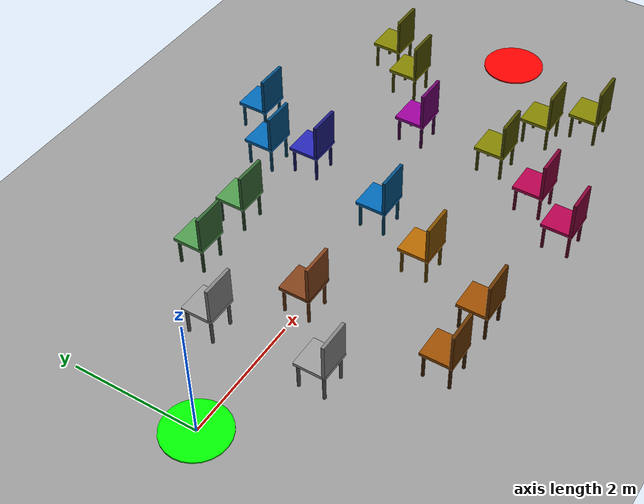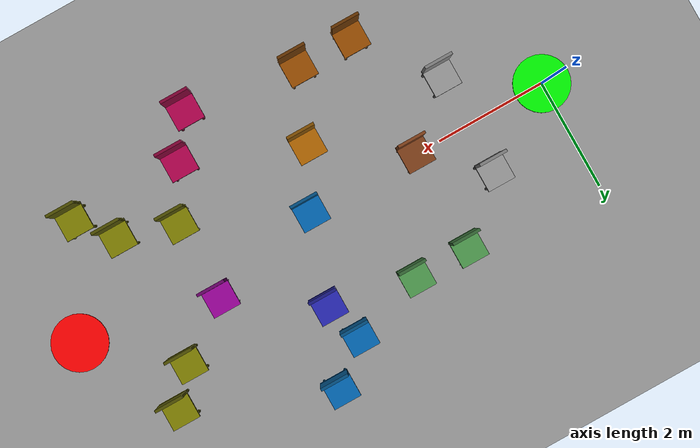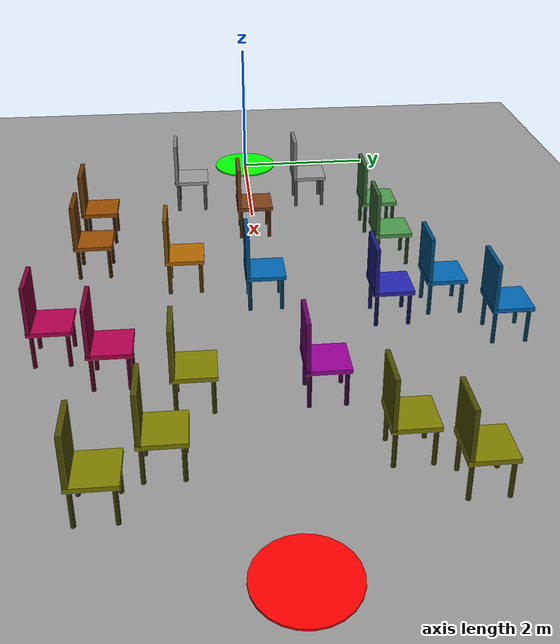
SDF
<?xml version="1.0" ?>
<sdf version="1.9">
  <world name="drone_arena">

    <!-- ── Physics ──────────────────────────────────────────────── -->
    <physics name="default_physics" type="ode">
      <max_step_size>0.001</max_step_size>
      <real_time_factor>1</real_time_factor>
      <real_time_update_rate>1000</real_time_update_rate>
    </physics>

    <!-- ── Plugins ──────────────────────────────────────────────── -->
    <plugin filename="gz-sim-physics-system"
            name="gz::sim::systems::Physics"/>
    <plugin filename="gz-sim-user-commands-system"
            name="gz::sim::systems::UserCommands"/>
    <plugin filename="gz-sim-scene-broadcaster-system"
            name="gz::sim::systems::SceneBroadcaster"/>
    <plugin filename="gz-sim-sensors-system"
            name="gz::sim::systems::Sensors">
      <render_engine>ogre2</render_engine>
    </plugin>
    <plugin filename="gz-sim-imu-system"
            name="gz::sim::systems::Imu"/>

    <!-- ── Lighting ──────────────────────────────────────────────── -->
    <light type="directional" name="sun">
      <cast_shadows>true</cast_shadows>
      <pose>0 0 10 0 0 0</pose>
      <diffuse>0.9 0.9 0.9 1</diffuse>
      <specular>0.3 0.3 0.3 1</specular>
      <direction>-0.5 0.1 -0.9</direction>
    </light>

    <!-- ── Ground plane ─────────────────────────────────────────── -->
    <model name="ground_plane">
      <static>true</static>
      <link name="link">
        <collision name="collision">
          <geometry><plane><normal>0 0 1</normal><size>50 50</size></plane></geometry>
        </collision>
        <visual name="visual">
          <geometry><plane><normal>0 0 1</normal><size>50 50</size></plane></geometry>
          <material>
            <ambient>0.6 0.6 0.6 1</ambient>
            <diffuse>0.6 0.6 0.6 1</diffuse>
          </material>
        </visual>
      </link>
    </model>

    <!-- ── Green START marker ────────────────────────────────────── -->
    <model name="start_marker">
      <static>true</static>
      <pose>0 0 0.01 0 0 0</pose>
      <link name="link">
        <visual name="visual">
          <geometry><cylinder><radius>0.5</radius><length>0.02</length></cylinder></geometry>
          <material>
            <ambient>0 0.8 0 1</ambient>
            <diffuse>0 1 0 1</diffuse>
            <emissive>0 0.5 0 1</emissive>
          </material>
        </visual>
      </link>
    </model>

    <!-- ── Red GOAL marker ──────────────────────────────────────── -->
    <model name="goal_marker">
      <static>true</static>
      <pose>9 0 0.01 0 0 0</pose>
      <link name="link">
        <visual name="visual">
          <geometry><cylinder><radius>0.5</radius><length>0.02</length></cylinder></geometry>
          <material>
            <ambient>0.9 0 0 1</ambient>
            <diffuse>1 0 0 1</diffuse>
            <emissive>0.5 0 0 1</emissive>
          </material>
        </visual>
      </link>
    </model>

    <!-- ── Chair 1 ───────────────────────────────────────────────── -->
    <model name="chair_1">
      <pose>2.5 0 0 0 0 0</pose>
      <link name="link">
        <inertial><mass>5</mass></inertial>
        <!-- Seat -->
        <visual name="seat">
          <pose>0 0 0.45 0 0 0</pose>
          <geometry><box><size>0.5 0.5 0.05</size></box></geometry>
          <material><ambient>0.4 0.2 0.1 1</ambient><diffuse>0.5 0.25 0.1 1</diffuse></material>
        </visual>
        <collision name="seat_col">
          <pose>0 0 0.45 0 0 0</pose>
          <geometry><box><size>0.5 0.5 0.05</size></box></geometry>
        </collision>
        <!-- Back -->
        <visual name="back">
          <pose>0 -0.22 0.75 0 0 0</pose>
          <geometry><box><size>0.5 0.05 0.6</size></box></geometry>
          <material><ambient>0.4 0.2 0.1 1</ambient><diffuse>0.5 0.25 0.1 1</diffuse></material>
        </visual>
        <collision name="back_col">
          <pose>0 -0.22 0.75 0 0 0</pose>
          <geometry><box><size>0.5 0.05 0.6</size></box></geometry>
        </collision>
        <!-- Legs -->
        <visual name="leg_fl"><pose>0.2 0.2 0.22 0 0 0</pose>
          <geometry><cylinder><radius>0.025</radius><length>0.45</length></cylinder></geometry>
          <material><ambient>0.3 0.15 0.05 1</ambient></material></visual>
        <collision name="leg_fl_col"><pose>0.2 0.2 0.22 0 0 0</pose>
          <geometry><cylinder><radius>0.025</radius><length>0.45</length></cylinder></geometry></collision>
        <visual name="leg_fr"><pose>-0.2 0.2 0.22 0 0 0</pose>
          <geometry><cylinder><radius>0.025</radius><length>0.45</length></cylinder></geometry>
          <material><ambient>0.3 0.15 0.05 1</ambient></material></visual>
        <collision name="leg_fr_col"><pose>-0.2 0.2 0.22 0 0 0</pose>
          <geometry><cylinder><radius>0.025</radius><length>0.45</length></cylinder></geometry></collision>
        <visual name="leg_bl"><pose>0.2 -0.2 0.22 0 0 0</pose>
          <geometry><cylinder><radius>0.025</radius><length>0.45</length></cylinder></geometry>
          <material><ambient>0.3 0.15 0.05 1</ambient></material></visual>
        <collision name="leg_bl_col"><pose>0.2 -0.2 0.22 0 0 0</pose>
          <geometry><cylinder><radius>0.025</radius><length>0.45</length></cylinder></geometry></collision>
        <visual name="leg_br"><pose>-0.2 -0.2 0.22 0 0 0</pose>
          <geometry><cylinder><radius>0.025</radius><length>0.45</length></cylinder></geometry>
          <material><ambient>0.3 0.15 0.05 1</ambient></material></visual>
        <collision name="leg_br_col"><pose>-0.2 -0.2 0.22 0 0 0</pose>
          <geometry><cylinder><radius>0.025</radius><length>0.45</length></cylinder></geometry></collision>
      </link>
    </model>

    <!-- ── Chair 2 ───────────────────────────────────────────────── -->
    <model name="chair_2">
      <pose>5.0 1.5 0 0 0 0</pose>
      <link name="link">
        <inertial><mass>5</mass></inertial>
        <visual name="seat"><pose>0 0 0.45 0 0 0</pose>
          <geometry><box><size>0.5 0.5 0.05</size></box></geometry>
          <material><ambient>0.1 0.1 0.5 1</ambient><diffuse>0.15 0.15 0.7 1</diffuse></material></visual>
        <collision name="seat_col"><pose>0 0 0.45 0 0 0</pose>
          <geometry><box><size>0.5 0.5 0.05</size></box></geometry></collision>
        <visual name="back"><pose>0 -0.22 0.75 0 0 0</pose>
          <geometry><box><size>0.5 0.05 0.6</size></box></geometry>
          <material><ambient>0.1 0.1 0.5 1</ambient></material></visual>
        <collision name="back_col"><pose>0 -0.22 0.75 0 0 0</pose>
          <geometry><box><size>0.5 0.05 0.6</size></box></geometry></collision>
        <visual name="leg_fl"><pose>0.2 0.2 0.22 0 0 0</pose>
          <geometry><cylinder><radius>0.025</radius><length>0.45</length></cylinder></geometry>
          <material><ambient>0.05 0.05 0.3 1</ambient></material></visual>
        <collision name="leg_fl_col"><pose>0.2 0.2 0.22 0 0 0</pose>
          <geometry><cylinder><radius>0.025</radius><length>0.45</length></cylinder></geometry></collision>
        <visual name="leg_fr"><pose>-0.2 0.2 0.22 0 0 0</pose>
          <geometry><cylinder><radius>0.025</radius><length>0.45</length></cylinder></geometry>
          <material><ambient>0.05 0.05 0.3 1</ambient></material></visual>
        <collision name="leg_fr_col"><pose>-0.2 0.2 0.22 0 0 0</pose>
          <geometry><cylinder><radius>0.025</radius><length>0.45</length></cylinder></geometry></collision>
        <visual name="leg_bl"><pose>0.2 -0.2 0.22 0 0 0</pose>
          <geometry><cylinder><radius>0.025</radius><length>0.45</length></cylinder></geometry>
          <material><ambient>0.05 0.05 0.3 1</ambient></material></visual>
        <collision name="leg_bl_col"><pose>0.2 -0.2 0.22 0 0 0</pose>
          <geometry><cylinder><radius>0.025</radius><length>0.45</length></cylinder></geometry></collision>
        <visual name="leg_br"><pose>-0.2 -0.2 0.22 0 0 0</pose>
          <geometry><cylinder><radius>0.025</radius><length>0.45</length></cylinder></geometry>
          <material><ambient>0.05 0.05 0.3 1</ambient></material></visual>
        <collision name="leg_br_col"><pose>-0.2 -0.2 0.22 0 0 0</pose>
          <geometry><cylinder><radius>0.025</radius><length>0.45</length></cylinder></geometry></collision>
      </link>
    </model>

    <!-- ── Chair 3 ───────────────────────────────────────────────── -->
    <model name="chair_3">
      <pose>4.0 -1.0 0 0 0 0</pose>
      <link name="link">
        <inertial><mass>5</mass></inertial>
        <visual name="seat"><pose>0 0 0.45 0 0 0</pose>
          <geometry><box><size>0.5 0.5 0.05</size></box></geometry>
          <material><ambient>0.5 0.3 0.0 1</ambient><diffuse>0.7 0.4 0.0 1</diffuse></material></visual>
        <collision name="seat_col"><pose>0 0 0.45 0 0 0</pose>
          <geometry><box><size>0.5 0.5 0.05</size></box></geometry></collision>
        <visual name="back"><pose>0 -0.22 0.75 0 0 0</pose>
          <geometry><box><size>0.5 0.05 0.6</size></box></geometry>
          <material><ambient>0.5 0.3 0.0 1</ambient></material></visual>
        <collision name="back_col"><pose>0 -0.22 0.75 0 0 0</pose>
          <geometry><box><size>0.5 0.05 0.6</size></box></geometry></collision>
        <visual name="leg_fl"><pose>0.2 0.2 0.22 0 0 0</pose>
          <geometry><cylinder><radius>0.025</radius><length>0.45</length></cylinder></geometry>
          <material><ambient>0.3 0.2 0.0 1</ambient></material></visual>
        <collision name="leg_fl_col"><pose>0.2 0.2 0.22 0 0 0</pose>
          <geometry><cylinder><radius>0.025</radius><length>0.45</length></cylinder></geometry></collision>
        <visual name="leg_fr"><pose>-0.2 0.2 0.22 0 0 0</pose>
          <geometry><cylinder><radius>0.025</radius><length>0.45</length></cylinder></geometry>
          <material><ambient>0.3 0.2 0.0 1</ambient></material></visual>
        <collision name="leg_fr_col"><pose>-0.2 0.2 0.22 0 0 0</pose>
          <geometry><cylinder><radius>0.025</radius><length>0.45</length></cylinder></geometry></collision>
        <visual name="leg_bl"><pose>0.2 -0.2 0.22 0 0 0</pose>
          <geometry><cylinder><radius>0.025</radius><length>0.45</length></cylinder></geometry>
          <material><ambient>0.3 0.2 0.0 1</ambient></material></visual>
        <collision name="leg_bl_col"><pose>0.2 -0.2 0.22 0 0 0</pose>
          <geometry><cylinder><radius>0.025</radius><length>0.45</length></cylinder></geometry></collision>
        <visual name="leg_br"><pose>-0.2 -0.2 0.22 0 0 0</pose>
          <geometry><cylinder><radius>0.025</radius><length>0.45</length></cylinder></geometry>
          <material><ambient>0.3 0.2 0.0 1</ambient></material></visual>
        <collision name="leg_br_col"><pose>-0.2 -0.2 0.22 0 0 0</pose>
          <geometry><cylinder><radius>0.025</radius><length>0.45</length></cylinder></geometry></collision>
      </link>
    </model>

    <!-- ── Chair 4 ───────────────────────────────────────────────── -->
    <model name="chair_4">
      <pose>6.5 0.5 0 0 0 0</pose>
      <link name="link">
        <inertial><mass>5</mass></inertial>
        <visual name="seat"><pose>0 0 0.45 0 0 0</pose>
          <geometry><box><size>0.5 0.5 0.05</size></box></geometry>
          <material><ambient>0.4 0.0 0.4 1</ambient><diffuse>0.6 0.0 0.6 1</diffuse></material></visual>
        <collision name="seat_col"><pose>0 0 0.45 0 0 0</pose>
          <geometry><box><size>0.5 0.5 0.05</size></box></geometry></collision>
        <visual name="back"><pose>0 -0.22 0.75 0 0 0</pose>
          <geometry><box><size>0.5 0.05 0.6</size></box></geometry>
          <material><ambient>0.4 0.0 0.4 1</ambient></material></visual>
        <collision name="back_col"><pose>0 -0.22 0.75 0 0 0</pose>
          <geometry><box><size>0.5 0.05 0.6</size></box></geometry></collision>
        <visual name="leg_fl"><pose>0.2 0.2 0.22 0 0 0</pose>
          <geometry><cylinder><radius>0.025</radius><length>0.45</length></cylinder></geometry>
          <material><ambient>0.2 0.0 0.2 1</ambient></material></visual>
        <collision name="leg_fl_col"><pose>0.2 0.2 0.22 0 0 0</pose>
          <geometry><cylinder><radius>0.025</radius><length>0.45</length></cylinder></geometry></collision>
        <visual name="leg_fr"><pose>-0.2 0.2 0.22 0 0 0</pose>
          <geometry><cylinder><radius>0.025</radius><length>0.45</length></cylinder></geometry>
          <material><ambient>0.2 0.0 0.2 1</ambient></material></visual>
        <collision name="leg_fr_col"><pose>-0.2 0.2 0.22 0 0 0</pose>
          <geometry><cylinder><radius>0.025</radius><length>0.45</length></cylinder></geometry></collision>
        <visual name="leg_bl"><pose>0.2 -0.2 0.22 0 0 0</pose>
          <geometry><cylinder><radius>0.025</radius><length>0.45</length></cylinder></geometry>
          <material><ambient>0.2 0.0 0.2 1</ambient></material></visual>
        <collision name="leg_bl_col"><pose>0.2 -0.2 0.22 0 0 0</pose>
          <geometry><cylinder><radius>0.025</radius><length>0.45</length></cylinder></geometry></collision>
        <visual name="leg_br"><pose>-0.2 -0.2 0.22 0 0 0</pose>
          <geometry><cylinder><radius>0.025</radius><length>0.45</length></cylinder></geometry>
          <material><ambient>0.2 0.0 0.2 1</ambient></material></visual>
        <collision name="leg_br_col"><pose>-0.2 -0.2 0.22 0 0 0</pose>
          <geometry><cylinder><radius>0.025</radius><length>0.45</length></cylinder></geometry></collision>
      </link>
    </model>

    <!-- ── Zone A : Entry chicane ──────────────────────────────────── -->
    <!-- chair_5 : upper entry blocker -->
    <model name="chair_5">
      <static>true</static>
      <pose>1.5 0.9 0 0 0 0</pose>
      <link name="link">
        <visual name="seat"><pose>0 0 0.45 0 0 0</pose>
          <geometry><box><size>0.5 0.5 0.05</size></box></geometry>
          <material><ambient>0.5 0.5 0.5 1</ambient><diffuse>0.6 0.6 0.6 1</diffuse></material></visual>
        <collision name="seat_col"><pose>0 0 0.45 0 0 0</pose>
          <geometry><box><size>0.5 0.5 0.05</size></box></geometry></collision>
        <visual name="back"><pose>0 -0.22 0.75 0 0 0</pose>
          <geometry><box><size>0.5 0.05 0.6</size></box></geometry>
          <material><ambient>0.5 0.5 0.5 1</ambient></material></visual>
        <collision name="back_col"><pose>0 -0.22 0.75 0 0 0</pose>
          <geometry><box><size>0.5 0.05 0.6</size></box></geometry></collision>
        <visual name="leg_fl"><pose>0.2 0.2 0.22 0 0 0</pose>
          <geometry><cylinder><radius>0.025</radius><length>0.45</length></cylinder></geometry>
          <material><ambient>0.3 0.3 0.3 1</ambient></material></visual>
        <collision name="leg_fl_col"><pose>0.2 0.2 0.22 0 0 0</pose>
          <geometry><cylinder><radius>0.025</radius><length>0.45</length></cylinder></geometry></collision>
        <visual name="leg_fr"><pose>-0.2 0.2 0.22 0 0 0</pose>
          <geometry><cylinder><radius>0.025</radius><length>0.45</length></cylinder></geometry>
          <material><ambient>0.3 0.3 0.3 1</ambient></material></visual>
        <collision name="leg_fr_col"><pose>-0.2 0.2 0.22 0 0 0</pose>
          <geometry><cylinder><radius>0.025</radius><length>0.45</length></cylinder></geometry></collision>
        <visual name="leg_bl"><pose>0.2 -0.2 0.22 0 0 0</pose>
          <geometry><cylinder><radius>0.025</radius><length>0.45</length></cylinder></geometry>
          <material><ambient>0.3 0.3 0.3 1</ambient></material></visual>
        <collision name="leg_bl_col"><pose>0.2 -0.2 0.22 0 0 0</pose>
          <geometry><cylinder><radius>0.025</radius><length>0.45</length></cylinder></geometry></collision>
        <visual name="leg_br"><pose>-0.2 -0.2 0.22 0 0 0</pose>
          <geometry><cylinder><radius>0.025</radius><length>0.45</length></cylinder></geometry>
          <material><ambient>0.3 0.3 0.3 1</ambient></material></visual>
        <collision name="leg_br_col"><pose>-0.2 -0.2 0.22 0 0 0</pose>
          <geometry><cylinder><radius>0.025</radius><length>0.45</length></cylinder></geometry></collision>
      </link>
    </model>

    <!-- chair_6 : lower entry blocker -->
    <model name="chair_6">
      <static>true</static>
      <pose>1.5 -0.9 0 0 0 0</pose>
      <link name="link">
        <visual name="seat"><pose>0 0 0.45 0 0 0</pose>
          <geometry><box><size>0.5 0.5 0.05</size></box></geometry>
          <material><ambient>0.5 0.5 0.5 1</ambient><diffuse>0.6 0.6 0.6 1</diffuse></material></visual>
        <collision name="seat_col"><pose>0 0 0.45 0 0 0</pose>
          <geometry><box><size>0.5 0.5 0.05</size></box></geometry></collision>
        <visual name="back"><pose>0 -0.22 0.75 0 0 0</pose>
          <geometry><box><size>0.5 0.05 0.6</size></box></geometry>
          <material><ambient>0.5 0.5 0.5 1</ambient></material></visual>
        <collision name="back_col"><pose>0 -0.22 0.75 0 0 0</pose>
          <geometry><box><size>0.5 0.05 0.6</size></box></geometry></collision>
        <visual name="leg_fl"><pose>0.2 0.2 0.22 0 0 0</pose>
          <geometry><cylinder><radius>0.025</radius><length>0.45</length></cylinder></geometry>
          <material><ambient>0.3 0.3 0.3 1</ambient></material></visual>
        <collision name="leg_fl_col"><pose>0.2 0.2 0.22 0 0 0</pose>
          <geometry><cylinder><radius>0.025</radius><length>0.45</length></cylinder></geometry></collision>
        <visual name="leg_fr"><pose>-0.2 0.2 0.22 0 0 0</pose>
          <geometry><cylinder><radius>0.025</radius><length>0.45</length></cylinder></geometry>
          <material><ambient>0.3 0.3 0.3 1</ambient></material></visual>
        <collision name="leg_fr_col"><pose>-0.2 0.2 0.22 0 0 0</pose>
          <geometry><cylinder><radius>0.025</radius><length>0.45</length></cylinder></geometry></collision>
        <visual name="leg_bl"><pose>0.2 -0.2 0.22 0 0 0</pose>
          <geometry><cylinder><radius>0.025</radius><length>0.45</length></cylinder></geometry>
          <material><ambient>0.3 0.3 0.3 1</ambient></material></visual>
        <collision name="leg_bl_col"><pose>0.2 -0.2 0.22 0 0 0</pose>
          <geometry><cylinder><radius>0.025</radius><length>0.45</length></cylinder></geometry></collision>
        <visual name="leg_br"><pose>-0.2 -0.2 0.22 0 0 0</pose>
          <geometry><cylinder><radius>0.025</radius><length>0.45</length></cylinder></geometry>
          <material><ambient>0.3 0.3 0.3 1</ambient></material></visual>
        <collision name="leg_br_col"><pose>-0.2 -0.2 0.22 0 0 0</pose>
          <geometry><cylinder><radius>0.025</radius><length>0.45</length></cylinder></geometry></collision>
      </link>
    </model>

    <!-- ── Zone B : Upper-branch corridor wall (y≈+1.8) ───────────── -->
    <!-- chair_7 -->
    <model name="chair_7">
      <static>true</static>
      <pose>2.5 1.8 0 0 0 0</pose>
      <link name="link">
        <visual name="seat"><pose>0 0 0.45 0 0 0</pose>
          <geometry><box><size>0.5 0.5 0.05</size></box></geometry>
          <material><ambient>0.2 0.4 0.2 1</ambient><diffuse>0.3 0.6 0.3 1</diffuse></material></visual>
        <collision name="seat_col"><pose>0 0 0.45 0 0 0</pose>
          <geometry><box><size>0.5 0.5 0.05</size></box></geometry></collision>
        <visual name="back"><pose>0 -0.22 0.75 0 0 0</pose>
          <geometry><box><size>0.5 0.05 0.6</size></box></geometry>
          <material><ambient>0.2 0.4 0.2 1</ambient></material></visual>
        <collision name="back_col"><pose>0 -0.22 0.75 0 0 0</pose>
          <geometry><box><size>0.5 0.05 0.6</size></box></geometry></collision>
        <visual name="leg_fl"><pose>0.2 0.2 0.22 0 0 0</pose>
          <geometry><cylinder><radius>0.025</radius><length>0.45</length></cylinder></geometry>
          <material><ambient>0.1 0.2 0.1 1</ambient></material></visual>
        <collision name="leg_fl_col"><pose>0.2 0.2 0.22 0 0 0</pose>
          <geometry><cylinder><radius>0.025</radius><length>0.45</length></cylinder></geometry></collision>
        <visual name="leg_fr"><pose>-0.2 0.2 0.22 0 0 0</pose>
          <geometry><cylinder><radius>0.025</radius><length>0.45</length></cylinder></geometry>
          <material><ambient>0.1 0.2 0.1 1</ambient></material></visual>
        <collision name="leg_fr_col"><pose>-0.2 0.2 0.22 0 0 0</pose>
          <geometry><cylinder><radius>0.025</radius><length>0.45</length></cylinder></geometry></collision>
        <visual name="leg_bl"><pose>0.2 -0.2 0.22 0 0 0</pose>
          <geometry><cylinder><radius>0.025</radius><length>0.45</length></cylinder></geometry>
          <material><ambient>0.1 0.2 0.1 1</ambient></material></visual>
        <collision name="leg_bl_col"><pose>0.2 -0.2 0.22 0 0 0</pose>
          <geometry><cylinder><radius>0.025</radius><length>0.45</length></cylinder></geometry></collision>
        <visual name="leg_br"><pose>-0.2 -0.2 0.22 0 0 0</pose>
          <geometry><cylinder><radius>0.025</radius><length>0.45</length></cylinder></geometry>
          <material><ambient>0.1 0.2 0.1 1</ambient></material></visual>
        <collision name="leg_br_col"><pose>-0.2 -0.2 0.22 0 0 0</pose>
          <geometry><cylinder><radius>0.025</radius><length>0.45</length></cylinder></geometry></collision>
      </link>
    </model>

    <!-- chair_8 -->
    <model name="chair_8">
      <static>true</static>
      <pose>3.5 1.8 0 0 0 0</pose>
      <link name="link">
        <visual name="seat"><pose>0 0 0.45 0 0 0</pose>
          <geometry><box><size>0.5 0.5 0.05</size></box></geometry>
          <material><ambient>0.2 0.4 0.2 1</ambient><diffuse>0.3 0.6 0.3 1</diffuse></material></visual>
        <collision name="seat_col"><pose>0 0 0.45 0 0 0</pose>
          <geometry><box><size>0.5 0.5 0.05</size></box></geometry></collision>
        <visual name="back"><pose>0 -0.22 0.75 0 0 0</pose>
          <geometry><box><size>0.5 0.05 0.6</size></box></geometry>
          <material><ambient>0.2 0.4 0.2 1</ambient></material></visual>
        <collision name="back_col"><pose>0 -0.22 0.75 0 0 0</pose>
          <geometry><box><size>0.5 0.05 0.6</size></box></geometry></collision>
        <visual name="leg_fl"><pose>0.2 0.2 0.22 0 0 0</pose>
          <geometry><cylinder><radius>0.025</radius><length>0.45</length></cylinder></geometry>
          <material><ambient>0.1 0.2 0.1 1</ambient></material></visual>
        <collision name="leg_fl_col"><pose>0.2 0.2 0.22 0 0 0</pose>
          <geometry><cylinder><radius>0.025</radius><length>0.45</length></cylinder></geometry></collision>
        <visual name="leg_fr"><pose>-0.2 0.2 0.22 0 0 0</pose>
          <geometry><cylinder><radius>0.025</radius><length>0.45</length></cylinder></geometry>
          <material><ambient>0.1 0.2 0.1 1</ambient></material></visual>
        <collision name="leg_fr_col"><pose>-0.2 0.2 0.22 0 0 0</pose>
          <geometry><cylinder><radius>0.025</radius><length>0.45</length></cylinder></geometry></collision>
        <visual name="leg_bl"><pose>0.2 -0.2 0.22 0 0 0</pose>
          <geometry><cylinder><radius>0.025</radius><length>0.45</length></cylinder></geometry>
          <material><ambient>0.1 0.2 0.1 1</ambient></material></visual>
        <collision name="leg_bl_col"><pose>0.2 -0.2 0.22 0 0 0</pose>
          <geometry><cylinder><radius>0.025</radius><length>0.45</length></cylinder></geometry></collision>
        <visual name="leg_br"><pose>-0.2 -0.2 0.22 0 0 0</pose>
          <geometry><cylinder><radius>0.025</radius><length>0.45</length></cylinder></geometry>
          <material><ambient>0.1 0.2 0.1 1</ambient></material></visual>
        <collision name="leg_br_col"><pose>-0.2 -0.2 0.22 0 0 0</pose>
          <geometry><cylinder><radius>0.025</radius><length>0.45</length></cylinder></geometry></collision>
      </link>
    </model>

    <!-- ── Zone C : Lower-branch corridor wall (y≈-2.2) ───────────── -->
    <!-- chair_9 -->
    <model name="chair_9">
      <static>true</static>
      <pose>2.5 -2.2 0 0 0 0</pose>
      <link name="link">
        <visual name="seat"><pose>0 0 0.45 0 0 0</pose>
          <geometry><box><size>0.5 0.5 0.05</size></box></geometry>
          <material><ambient>0.4 0.2 0.0 1</ambient><diffuse>0.6 0.3 0.0 1</diffuse></material></visual>
        <collision name="seat_col"><pose>0 0 0.45 0 0 0</pose>
          <geometry><box><size>0.5 0.5 0.05</size></box></geometry></collision>
        <visual name="back"><pose>0 -0.22 0.75 0 0 0</pose>
          <geometry><box><size>0.5 0.05 0.6</size></box></geometry>
          <material><ambient>0.4 0.2 0.0 1</ambient></material></visual>
        <collision name="back_col"><pose>0 -0.22 0.75 0 0 0</pose>
          <geometry><box><size>0.5 0.05 0.6</size></box></geometry></collision>
        <visual name="leg_fl"><pose>0.2 0.2 0.22 0 0 0</pose>
          <geometry><cylinder><radius>0.025</radius><length>0.45</length></cylinder></geometry>
          <material><ambient>0.2 0.1 0.0 1</ambient></material></visual>
        <collision name="leg_fl_col"><pose>0.2 0.2 0.22 0 0 0</pose>
          <geometry><cylinder><radius>0.025</radius><length>0.45</length></cylinder></geometry></collision>
        <visual name="leg_fr"><pose>-0.2 0.2 0.22 0 0 0</pose>
          <geometry><cylinder><radius>0.025</radius><length>0.45</length></cylinder></geometry>
          <material><ambient>0.2 0.1 0.0 1</ambient></material></visual>
        <collision name="leg_fr_col"><pose>-0.2 0.2 0.22 0 0 0</pose>
          <geometry><cylinder><radius>0.025</radius><length>0.45</length></cylinder></geometry></collision>
        <visual name="leg_bl"><pose>0.2 -0.2 0.22 0 0 0</pose>
          <geometry><cylinder><radius>0.025</radius><length>0.45</length></cylinder></geometry>
          <material><ambient>0.2 0.1 0.0 1</ambient></material></visual>
        <collision name="leg_bl_col"><pose>0.2 -0.2 0.22 0 0 0</pose>
          <geometry><cylinder><radius>0.025</radius><length>0.45</length></cylinder></geometry></collision>
        <visual name="leg_br"><pose>-0.2 -0.2 0.22 0 0 0</pose>
          <geometry><cylinder><radius>0.025</radius><length>0.45</length></cylinder></geometry>
          <material><ambient>0.2 0.1 0.0 1</ambient></material></visual>
        <collision name="leg_br_col"><pose>-0.2 -0.2 0.22 0 0 0</pose>
          <geometry><cylinder><radius>0.025</radius><length>0.45</length></cylinder></geometry></collision>
      </link>
    </model>

    <!-- chair_10 -->
    <model name="chair_10">
      <static>true</static>
      <pose>3.5 -2.2 0 0 0 0</pose>
      <link name="link">
        <visual name="seat"><pose>0 0 0.45 0 0 0</pose>
          <geometry><box><size>0.5 0.5 0.05</size></box></geometry>
          <material><ambient>0.4 0.2 0.0 1</ambient><diffuse>0.6 0.3 0.0 1</diffuse></material></visual>
        <collision name="seat_col"><pose>0 0 0.45 0 0 0</pose>
          <geometry><box><size>0.5 0.5 0.05</size></box></geometry></collision>
        <visual name="back"><pose>0 -0.22 0.75 0 0 0</pose>
          <geometry><box><size>0.5 0.05 0.6</size></box></geometry>
          <material><ambient>0.4 0.2 0.0 1</ambient></material></visual>
        <collision name="back_col"><pose>0 -0.22 0.75 0 0 0</pose>
          <geometry><box><size>0.5 0.05 0.6</size></box></geometry></collision>
        <visual name="leg_fl"><pose>0.2 0.2 0.22 0 0 0</pose>
          <geometry><cylinder><radius>0.025</radius><length>0.45</length></cylinder></geometry>
          <material><ambient>0.2 0.1 0.0 1</ambient></material></visual>
        <collision name="leg_fl_col"><pose>0.2 0.2 0.22 0 0 0</pose>
          <geometry><cylinder><radius>0.025</radius><length>0.45</length></cylinder></geometry></collision>
        <visual name="leg_fr"><pose>-0.2 0.2 0.22 0 0 0</pose>
          <geometry><cylinder><radius>0.025</radius><length>0.45</length></cylinder></geometry>
          <material><ambient>0.2 0.1 0.0 1</ambient></material></visual>
        <collision name="leg_fr_col"><pose>-0.2 0.2 0.22 0 0 0</pose>
          <geometry><cylinder><radius>0.025</radius><length>0.45</length></cylinder></geometry></collision>
        <visual name="leg_bl"><pose>0.2 -0.2 0.22 0 0 0</pose>
          <geometry><cylinder><radius>0.025</radius><length>0.45</length></cylinder></geometry>
          <material><ambient>0.2 0.1 0.0 1</ambient></material></visual>
        <collision name="leg_bl_col"><pose>0.2 -0.2 0.22 0 0 0</pose>
          <geometry><cylinder><radius>0.025</radius><length>0.45</length></cylinder></geometry></collision>
        <visual name="leg_br"><pose>-0.2 -0.2 0.22 0 0 0</pose>
          <geometry><cylinder><radius>0.025</radius><length>0.45</length></cylinder></geometry>
          <material><ambient>0.2 0.1 0.0 1</ambient></material></visual>
        <collision name="leg_br_col"><pose>-0.2 -0.2 0.22 0 0 0</pose>
          <geometry><cylinder><radius>0.025</radius><length>0.45</length></cylinder></geometry></collision>
      </link>
    </model>

    <!-- ── Zone D : Central squeeze + dead-end pocket ─────────────── -->
    <!-- chair_11 : centre-line pinch -->
    <model name="chair_11">
      <static>true</static>
      <pose>4.5 0.0 0 0 0 0</pose>
      <link name="link">
        <visual name="seat"><pose>0 0 0.45 0 0 0</pose>
          <geometry><box><size>0.5 0.5 0.05</size></box></geometry>
          <material><ambient>0.0 0.3 0.5 1</ambient><diffuse>0.0 0.4 0.7 1</diffuse></material></visual>
        <collision name="seat_col"><pose>0 0 0.45 0 0 0</pose>
          <geometry><box><size>0.5 0.5 0.05</size></box></geometry></collision>
        <visual name="back"><pose>0 -0.22 0.75 0 0 0</pose>
          <geometry><box><size>0.5 0.05 0.6</size></box></geometry>
          <material><ambient>0.0 0.3 0.5 1</ambient></material></visual>
        <collision name="back_col"><pose>0 -0.22 0.75 0 0 0</pose>
          <geometry><box><size>0.5 0.05 0.6</size></box></geometry></collision>
        <visual name="leg_fl"><pose>0.2 0.2 0.22 0 0 0</pose>
          <geometry><cylinder><radius>0.025</radius><length>0.45</length></cylinder></geometry>
          <material><ambient>0.0 0.2 0.3 1</ambient></material></visual>
        <collision name="leg_fl_col"><pose>0.2 0.2 0.22 0 0 0</pose>
          <geometry><cylinder><radius>0.025</radius><length>0.45</length></cylinder></geometry></collision>
        <visual name="leg_fr"><pose>-0.2 0.2 0.22 0 0 0</pose>
          <geometry><cylinder><radius>0.025</radius><length>0.45</length></cylinder></geometry>
          <material><ambient>0.0 0.2 0.3 1</ambient></material></visual>
        <collision name="leg_fr_col"><pose>-0.2 0.2 0.22 0 0 0</pose>
          <geometry><cylinder><radius>0.025</radius><length>0.45</length></cylinder></geometry></collision>
        <visual name="leg_bl"><pose>0.2 -0.2 0.22 0 0 0</pose>
          <geometry><cylinder><radius>0.025</radius><length>0.45</length></cylinder></geometry>
          <material><ambient>0.0 0.2 0.3 1</ambient></material></visual>
        <collision name="leg_bl_col"><pose>0.2 -0.2 0.22 0 0 0</pose>
          <geometry><cylinder><radius>0.025</radius><length>0.45</length></cylinder></geometry></collision>
        <visual name="leg_br"><pose>-0.2 -0.2 0.22 0 0 0</pose>
          <geometry><cylinder><radius>0.025</radius><length>0.45</length></cylinder></geometry>
          <material><ambient>0.0 0.2 0.3 1</ambient></material></visual>
        <collision name="leg_br_col"><pose>-0.2 -0.2 0.22 0 0 0</pose>
          <geometry><cylinder><radius>0.025</radius><length>0.45</length></cylinder></geometry></collision>
      </link>
    </model>

    <!-- chair_12 : dead-end pocket back wall -->
    <model name="chair_12">
      <static>true</static>
      <pose>5.5 2.8 0 0 0 0</pose>
      <link name="link">
        <visual name="seat"><pose>0 0 0.45 0 0 0</pose>
          <geometry><box><size>0.5 0.5 0.05</size></box></geometry>
          <material><ambient>0.0 0.3 0.5 1</ambient><diffuse>0.0 0.4 0.7 1</diffuse></material></visual>
        <collision name="seat_col"><pose>0 0 0.45 0 0 0</pose>
          <geometry><box><size>0.5 0.5 0.05</size></box></geometry></collision>
        <visual name="back"><pose>0 -0.22 0.75 0 0 0</pose>
          <geometry><box><size>0.5 0.05 0.6</size></box></geometry>
          <material><ambient>0.0 0.3 0.5 1</ambient></material></visual>
        <collision name="back_col"><pose>0 -0.22 0.75 0 0 0</pose>
          <geometry><box><size>0.5 0.05 0.6</size></box></geometry></collision>
        <visual name="leg_fl"><pose>0.2 0.2 0.22 0 0 0</pose>
          <geometry><cylinder><radius>0.025</radius><length>0.45</length></cylinder></geometry>
          <material><ambient>0.0 0.2 0.3 1</ambient></material></visual>
        <collision name="leg_fl_col"><pose>0.2 0.2 0.22 0 0 0</pose>
          <geometry><cylinder><radius>0.025</radius><length>0.45</length></cylinder></geometry></collision>
        <visual name="leg_fr"><pose>-0.2 0.2 0.22 0 0 0</pose>
          <geometry><cylinder><radius>0.025</radius><length>0.45</length></cylinder></geometry>
          <material><ambient>0.0 0.2 0.3 1</ambient></material></visual>
        <collision name="leg_fr_col"><pose>-0.2 0.2 0.22 0 0 0</pose>
          <geometry><cylinder><radius>0.025</radius><length>0.45</length></cylinder></geometry></collision>
        <visual name="leg_bl"><pose>0.2 -0.2 0.22 0 0 0</pose>
          <geometry><cylinder><radius>0.025</radius><length>0.45</length></cylinder></geometry>
          <material><ambient>0.0 0.2 0.3 1</ambient></material></visual>
        <collision name="leg_bl_col"><pose>0.2 -0.2 0.22 0 0 0</pose>
          <geometry><cylinder><radius>0.025</radius><length>0.45</length></cylinder></geometry></collision>
        <visual name="leg_br"><pose>-0.2 -0.2 0.22 0 0 0</pose>
          <geometry><cylinder><radius>0.025</radius><length>0.45</length></cylinder></geometry>
          <material><ambient>0.0 0.2 0.3 1</ambient></material></visual>
        <collision name="leg_br_col"><pose>-0.2 -0.2 0.22 0 0 0</pose>
          <geometry><cylinder><radius>0.025</radius><length>0.45</length></cylinder></geometry></collision>
      </link>
    </model>

    <!-- chair_13 : dead-end pocket left side wall -->
    <model name="chair_13">
      <static>true</static>
      <pose>4.8 2.2 0 0 0 0</pose>
      <link name="link">
        <visual name="seat"><pose>0 0 0.45 0 0 0</pose>
          <geometry><box><size>0.5 0.5 0.05</size></box></geometry>
          <material><ambient>0.0 0.3 0.5 1</ambient><diffuse>0.0 0.4 0.7 1</diffuse></material></visual>
        <collision name="seat_col"><pose>0 0 0.45 0 0 0</pose>
          <geometry><box><size>0.5 0.5 0.05</size></box></geometry></collision>
        <visual name="back"><pose>0 -0.22 0.75 0 0 0</pose>
          <geometry><box><size>0.5 0.05 0.6</size></box></geometry>
          <material><ambient>0.0 0.3 0.5 1</ambient></material></visual>
        <collision name="back_col"><pose>0 -0.22 0.75 0 0 0</pose>
          <geometry><box><size>0.5 0.05 0.6</size></box></geometry></collision>
        <visual name="leg_fl"><pose>0.2 0.2 0.22 0 0 0</pose>
          <geometry><cylinder><radius>0.025</radius><length>0.45</length></cylinder></geometry>
          <material><ambient>0.0 0.2 0.3 1</ambient></material></visual>
        <collision name="leg_fl_col"><pose>0.2 0.2 0.22 0 0 0</pose>
          <geometry><cylinder><radius>0.025</radius><length>0.45</length></cylinder></geometry></collision>
        <visual name="leg_fr"><pose>-0.2 0.2 0.22 0 0 0</pose>
          <geometry><cylinder><radius>0.025</radius><length>0.45</length></cylinder></geometry>
          <material><ambient>0.0 0.2 0.3 1</ambient></material></visual>
        <collision name="leg_fr_col"><pose>-0.2 0.2 0.22 0 0 0</pose>
          <geometry><cylinder><radius>0.025</radius><length>0.45</length></cylinder></geometry></collision>
        <visual name="leg_bl"><pose>0.2 -0.2 0.22 0 0 0</pose>
          <geometry><cylinder><radius>0.025</radius><length>0.45</length></cylinder></geometry>
          <material><ambient>0.0 0.2 0.3 1</ambient></material></visual>
        <collision name="leg_bl_col"><pose>0.2 -0.2 0.22 0 0 0</pose>
          <geometry><cylinder><radius>0.025</radius><length>0.45</length></cylinder></geometry></collision>
        <visual name="leg_br"><pose>-0.2 -0.2 0.22 0 0 0</pose>
          <geometry><cylinder><radius>0.025</radius><length>0.45</length></cylinder></geometry>
          <material><ambient>0.0 0.2 0.3 1</ambient></material></visual>
        <collision name="leg_br_col"><pose>-0.2 -0.2 0.22 0 0 0</pose>
          <geometry><cylinder><radius>0.025</radius><length>0.45</length></cylinder></geometry></collision>
      </link>
    </model>

    <!-- chair_14 : open-space scatter -->
    <model name="chair_14">
      <static>true</static>
      <pose>5.5 -2.5 0 0 0 0</pose>
      <link name="link">
        <visual name="seat"><pose>0 0 0.45 0 0 0</pose>
          <geometry><box><size>0.5 0.5 0.05</size></box></geometry>
          <material><ambient>0.5 0.0 0.2 1</ambient><diffuse>0.7 0.0 0.3 1</diffuse></material></visual>
        <collision name="seat_col"><pose>0 0 0.45 0 0 0</pose>
          <geometry><box><size>0.5 0.5 0.05</size></box></geometry></collision>
        <visual name="back"><pose>0 -0.22 0.75 0 0 0</pose>
          <geometry><box><size>0.5 0.05 0.6</size></box></geometry>
          <material><ambient>0.5 0.0 0.2 1</ambient></material></visual>
        <collision name="back_col"><pose>0 -0.22 0.75 0 0 0</pose>
          <geometry><box><size>0.5 0.05 0.6</size></box></geometry></collision>
        <visual name="leg_fl"><pose>0.2 0.2 0.22 0 0 0</pose>
          <geometry><cylinder><radius>0.025</radius><length>0.45</length></cylinder></geometry>
          <material><ambient>0.3 0.0 0.1 1</ambient></material></visual>
        <collision name="leg_fl_col"><pose>0.2 0.2 0.22 0 0 0</pose>
          <geometry><cylinder><radius>0.025</radius><length>0.45</length></cylinder></geometry></collision>
        <visual name="leg_fr"><pose>-0.2 0.2 0.22 0 0 0</pose>
          <geometry><cylinder><radius>0.025</radius><length>0.45</length></cylinder></geometry>
          <material><ambient>0.3 0.0 0.1 1</ambient></material></visual>
        <collision name="leg_fr_col"><pose>-0.2 0.2 0.22 0 0 0</pose>
          <geometry><cylinder><radius>0.025</radius><length>0.45</length></cylinder></geometry></collision>
        <visual name="leg_bl"><pose>0.2 -0.2 0.22 0 0 0</pose>
          <geometry><cylinder><radius>0.025</radius><length>0.45</length></cylinder></geometry>
          <material><ambient>0.3 0.0 0.1 1</ambient></material></visual>
        <collision name="leg_bl_col"><pose>0.2 -0.2 0.22 0 0 0</pose>
          <geometry><cylinder><radius>0.025</radius><length>0.45</length></cylinder></geometry></collision>
        <visual name="leg_br"><pose>-0.2 -0.2 0.22 0 0 0</pose>
          <geometry><cylinder><radius>0.025</radius><length>0.45</length></cylinder></geometry>
          <material><ambient>0.3 0.0 0.1 1</ambient></material></visual>
        <collision name="leg_br_col"><pose>-0.2 -0.2 0.22 0 0 0</pose>
          <geometry><cylinder><radius>0.025</radius><length>0.45</length></cylinder></geometry></collision>
      </link>
    </model>

    <!-- chair_15 : open-space scatter -->
    <model name="chair_15">
      <static>true</static>
      <pose>6.0 -1.8 0 0 0 0</pose>
      <link name="link">
        <visual name="seat"><pose>0 0 0.45 0 0 0</pose>
          <geometry><box><size>0.5 0.5 0.05</size></box></geometry>
          <material><ambient>0.5 0.0 0.2 1</ambient><diffuse>0.7 0.0 0.3 1</diffuse></material></visual>
        <collision name="seat_col"><pose>0 0 0.45 0 0 0</pose>
          <geometry><box><size>0.5 0.5 0.05</size></box></geometry></collision>
        <visual name="back"><pose>0 -0.22 0.75 0 0 0</pose>
          <geometry><box><size>0.5 0.05 0.6</size></box></geometry>
          <material><ambient>0.5 0.0 0.2 1</ambient></material></visual>
        <collision name="back_col"><pose>0 -0.22 0.75 0 0 0</pose>
          <geometry><box><size>0.5 0.05 0.6</size></box></geometry></collision>
        <visual name="leg_fl"><pose>0.2 0.2 0.22 0 0 0</pose>
          <geometry><cylinder><radius>0.025</radius><length>0.45</length></cylinder></geometry>
          <material><ambient>0.3 0.0 0.1 1</ambient></material></visual>
        <collision name="leg_fl_col"><pose>0.2 0.2 0.22 0 0 0</pose>
          <geometry><cylinder><radius>0.025</radius><length>0.45</length></cylinder></geometry></collision>
        <visual name="leg_fr"><pose>-0.2 0.2 0.22 0 0 0</pose>
          <geometry><cylinder><radius>0.025</radius><length>0.45</length></cylinder></geometry>
          <material><ambient>0.3 0.0 0.1 1</ambient></material></visual>
        <collision name="leg_fr_col"><pose>-0.2 0.2 0.22 0 0 0</pose>
          <geometry><cylinder><radius>0.025</radius><length>0.45</length></cylinder></geometry></collision>
        <visual name="leg_bl"><pose>0.2 -0.2 0.22 0 0 0</pose>
          <geometry><cylinder><radius>0.025</radius><length>0.45</length></cylinder></geometry>
          <material><ambient>0.3 0.0 0.1 1</ambient></material></visual>
        <collision name="leg_bl_col"><pose>0.2 -0.2 0.22 0 0 0</pose>
          <geometry><cylinder><radius>0.025</radius><length>0.45</length></cylinder></geometry></collision>
        <visual name="leg_br"><pose>-0.2 -0.2 0.22 0 0 0</pose>
          <geometry><cylinder><radius>0.025</radius><length>0.45</length></cylinder></geometry>
          <material><ambient>0.3 0.0 0.1 1</ambient></material></visual>
        <collision name="leg_br_col"><pose>-0.2 -0.2 0.22 0 0 0</pose>
          <geometry><cylinder><radius>0.025</radius><length>0.45</length></cylinder></geometry></collision>
      </link>
    </model>

    <!-- ── Zone E : Final gate before goal ────────────────────────── -->
    <!-- chair_16 : upper gate post -->
    <model name="chair_16">
      <static>true</static>
      <pose>7.5 1.2 0 0 0 0</pose>
      <link name="link">
        <visual name="seat"><pose>0 0 0.45 0 0 0</pose>
          <geometry><box><size>0.5 0.5 0.05</size></box></geometry>
          <material><ambient>0.3 0.3 0.0 1</ambient><diffuse>0.5 0.5 0.0 1</diffuse></material></visual>
        <collision name="seat_col"><pose>0 0 0.45 0 0 0</pose>
          <geometry><box><size>0.5 0.5 0.05</size></box></geometry></collision>
        <visual name="back"><pose>0 -0.22 0.75 0 0 0</pose>
          <geometry><box><size>0.5 0.05 0.6</size></box></geometry>
          <material><ambient>0.3 0.3 0.0 1</ambient></material></visual>
        <collision name="back_col"><pose>0 -0.22 0.75 0 0 0</pose>
          <geometry><box><size>0.5 0.05 0.6</size></box></geometry></collision>
        <visual name="leg_fl"><pose>0.2 0.2 0.22 0 0 0</pose>
          <geometry><cylinder><radius>0.025</radius><length>0.45</length></cylinder></geometry>
          <material><ambient>0.2 0.2 0.0 1</ambient></material></visual>
        <collision name="leg_fl_col"><pose>0.2 0.2 0.22 0 0 0</pose>
          <geometry><cylinder><radius>0.025</radius><length>0.45</length></cylinder></geometry></collision>
        <visual name="leg_fr"><pose>-0.2 0.2 0.22 0 0 0</pose>
          <geometry><cylinder><radius>0.025</radius><length>0.45</length></cylinder></geometry>
          <material><ambient>0.2 0.2 0.0 1</ambient></material></visual>
        <collision name="leg_fr_col"><pose>-0.2 0.2 0.22 0 0 0</pose>
          <geometry><cylinder><radius>0.025</radius><length>0.45</length></cylinder></geometry></collision>
        <visual name="leg_bl"><pose>0.2 -0.2 0.22 0 0 0</pose>
          <geometry><cylinder><radius>0.025</radius><length>0.45</length></cylinder></geometry>
          <material><ambient>0.2 0.2 0.0 1</ambient></material></visual>
        <collision name="leg_bl_col"><pose>0.2 -0.2 0.22 0 0 0</pose>
          <geometry><cylinder><radius>0.025</radius><length>0.45</length></cylinder></geometry></collision>
        <visual name="leg_br"><pose>-0.2 -0.2 0.22 0 0 0</pose>
          <geometry><cylinder><radius>0.025</radius><length>0.45</length></cylinder></geometry>
          <material><ambient>0.2 0.2 0.0 1</ambient></material></visual>
        <collision name="leg_br_col"><pose>-0.2 -0.2 0.22 0 0 0</pose>
          <geometry><cylinder><radius>0.025</radius><length>0.45</length></cylinder></geometry></collision>
      </link>
    </model>

    <!-- chair_17 : lower gate post -->
    <model name="chair_17">
      <static>true</static>
      <pose>7.5 -1.2 0 0 0 0</pose>
      <link name="link">
        <visual name="seat"><pose>0 0 0.45 0 0 0</pose>
          <geometry><box><size>0.5 0.5 0.05</size></box></geometry>
          <material><ambient>0.3 0.3 0.0 1</ambient><diffuse>0.5 0.5 0.0 1</diffuse></material></visual>
        <collision name="seat_col"><pose>0 0 0.45 0 0 0</pose>
          <geometry><box><size>0.5 0.5 0.05</size></box></geometry></collision>
        <visual name="back"><pose>0 -0.22 0.75 0 0 0</pose>
          <geometry><box><size>0.5 0.05 0.6</size></box></geometry>
          <material><ambient>0.3 0.3 0.0 1</ambient></material></visual>
        <collision name="back_col"><pose>0 -0.22 0.75 0 0 0</pose>
          <geometry><box><size>0.5 0.05 0.6</size></box></geometry></collision>
        <visual name="leg_fl"><pose>0.2 0.2 0.22 0 0 0</pose>
          <geometry><cylinder><radius>0.025</radius><length>0.45</length></cylinder></geometry>
          <material><ambient>0.2 0.2 0.0 1</ambient></material></visual>
        <collision name="leg_fl_col"><pose>0.2 0.2 0.22 0 0 0</pose>
          <geometry><cylinder><radius>0.025</radius><length>0.45</length></cylinder></geometry></collision>
        <visual name="leg_fr"><pose>-0.2 0.2 0.22 0 0 0</pose>
          <geometry><cylinder><radius>0.025</radius><length>0.45</length></cylinder></geometry>
          <material><ambient>0.2 0.2 0.0 1</ambient></material></visual>
        <collision name="leg_fr_col"><pose>-0.2 0.2 0.22 0 0 0</pose>
          <geometry><cylinder><radius>0.025</radius><length>0.45</length></cylinder></geometry></collision>
        <visual name="leg_bl"><pose>0.2 -0.2 0.22 0 0 0</pose>
          <geometry><cylinder><radius>0.025</radius><length>0.45</length></cylinder></geometry>
          <material><ambient>0.2 0.2 0.0 1</ambient></material></visual>
        <collision name="leg_bl_col"><pose>0.2 -0.2 0.22 0 0 0</pose>
          <geometry><cylinder><radius>0.025</radius><length>0.45</length></cylinder></geometry></collision>
        <visual name="leg_br"><pose>-0.2 -0.2 0.22 0 0 0</pose>
          <geometry><cylinder><radius>0.025</radius><length>0.45</length></cylinder></geometry>
          <material><ambient>0.2 0.2 0.0 1</ambient></material></visual>
        <collision name="leg_br_col"><pose>-0.2 -0.2 0.22 0 0 0</pose>
          <geometry><cylinder><radius>0.025</radius><length>0.45</length></cylinder></geometry></collision>
      </link>
    </model>

    <!-- chair_18 : approach scatter upper -->
    <model name="chair_18">
      <static>true</static>
      <pose>8.0 1.8 0 0 0 0</pose>
      <link name="link">
        <visual name="seat"><pose>0 0 0.45 0 0 0</pose>
          <geometry><box><size>0.5 0.5 0.05</size></box></geometry>
          <material><ambient>0.3 0.3 0.0 1</ambient><diffuse>0.5 0.5 0.0 1</diffuse></material></visual>
        <collision name="seat_col"><pose>0 0 0.45 0 0 0</pose>
          <geometry><box><size>0.5 0.5 0.05</size></box></geometry></collision>
        <visual name="back"><pose>0 -0.22 0.75 0 0 0</pose>
          <geometry><box><size>0.5 0.05 0.6</size></box></geometry>
          <material><ambient>0.3 0.3 0.0 1</ambient></material></visual>
        <collision name="back_col"><pose>0 -0.22 0.75 0 0 0</pose>
          <geometry><box><size>0.5 0.05 0.6</size></box></geometry></collision>
        <visual name="leg_fl"><pose>0.2 0.2 0.22 0 0 0</pose>
          <geometry><cylinder><radius>0.025</radius><length>0.45</length></cylinder></geometry>
          <material><ambient>0.2 0.2 0.0 1</ambient></material></visual>
        <collision name="leg_fl_col"><pose>0.2 0.2 0.22 0 0 0</pose>
          <geometry><cylinder><radius>0.025</radius><length>0.45</length></cylinder></geometry></collision>
        <visual name="leg_fr"><pose>-0.2 0.2 0.22 0 0 0</pose>
          <geometry><cylinder><radius>0.025</radius><length>0.45</length></cylinder></geometry>
          <material><ambient>0.2 0.2 0.0 1</ambient></material></visual>
        <collision name="leg_fr_col"><pose>-0.2 0.2 0.22 0 0 0</pose>
          <geometry><cylinder><radius>0.025</radius><length>0.45</length></cylinder></geometry></collision>
        <visual name="leg_bl"><pose>0.2 -0.2 0.22 0 0 0</pose>
          <geometry><cylinder><radius>0.025</radius><length>0.45</length></cylinder></geometry>
          <material><ambient>0.2 0.2 0.0 1</ambient></material></visual>
        <collision name="leg_bl_col"><pose>0.2 -0.2 0.22 0 0 0</pose>
          <geometry><cylinder><radius>0.025</radius><length>0.45</length></cylinder></geometry></collision>
        <visual name="leg_br"><pose>-0.2 -0.2 0.22 0 0 0</pose>
          <geometry><cylinder><radius>0.025</radius><length>0.45</length></cylinder></geometry>
          <material><ambient>0.2 0.2 0.0 1</ambient></material></visual>
        <collision name="leg_br_col"><pose>-0.2 -0.2 0.22 0 0 0</pose>
          <geometry><cylinder><radius>0.025</radius><length>0.45</length></cylinder></geometry></collision>
      </link>
    </model>

    <!-- chair_19 : approach scatter lower -->
    <model name="chair_19">
      <static>true</static>
      <pose>8.0 -1.8 0 0 0 0</pose>
      <link name="link">
        <visual name="seat"><pose>0 0 0.45 0 0 0</pose>
          <geometry><box><size>0.5 0.5 0.05</size></box></geometry>
          <material><ambient>0.3 0.3 0.0 1</ambient><diffuse>0.5 0.5 0.0 1</diffuse></material></visual>
        <collision name="seat_col"><pose>0 0 0.45 0 0 0</pose>
          <geometry><box><size>0.5 0.5 0.05</size></box></geometry></collision>
        <visual name="back"><pose>0 -0.22 0.75 0 0 0</pose>
          <geometry><box><size>0.5 0.05 0.6</size></box></geometry>
          <material><ambient>0.3 0.3 0.0 1</ambient></material></visual>
        <collision name="back_col"><pose>0 -0.22 0.75 0 0 0</pose>
          <geometry><box><size>0.5 0.05 0.6</size></box></geometry></collision>
        <visual name="leg_fl"><pose>0.2 0.2 0.22 0 0 0</pose>
          <geometry><cylinder><radius>0.025</radius><length>0.45</length></cylinder></geometry>
          <material><ambient>0.2 0.2 0.0 1</ambient></material></visual>
        <collision name="leg_fl_col"><pose>0.2 0.2 0.22 0 0 0</pose>
          <geometry><cylinder><radius>0.025</radius><length>0.45</length></cylinder></geometry></collision>
        <visual name="leg_fr"><pose>-0.2 0.2 0.22 0 0 0</pose>
          <geometry><cylinder><radius>0.025</radius><length>0.45</length></cylinder></geometry>
          <material><ambient>0.2 0.2 0.0 1</ambient></material></visual>
        <collision name="leg_fr_col"><pose>-0.2 0.2 0.22 0 0 0</pose>
          <geometry><cylinder><radius>0.025</radius><length>0.45</length></cylinder></geometry></collision>
        <visual name="leg_bl"><pose>0.2 -0.2 0.22 0 0 0</pose>
          <geometry><cylinder><radius>0.025</radius><length>0.45</length></cylinder></geometry>
          <material><ambient>0.2 0.2 0.0 1</ambient></material></visual>
        <collision name="leg_bl_col"><pose>0.2 -0.2 0.22 0 0 0</pose>
          <geometry><cylinder><radius>0.025</radius><length>0.45</length></cylinder></geometry></collision>
        <visual name="leg_br"><pose>-0.2 -0.2 0.22 0 0 0</pose>
          <geometry><cylinder><radius>0.025</radius><length>0.45</length></cylinder></geometry>
          <material><ambient>0.2 0.2 0.0 1</ambient></material></visual>
        <collision name="leg_br_col"><pose>-0.2 -0.2 0.22 0 0 0</pose>
          <geometry><cylinder><radius>0.025</radius><length>0.45</length></cylinder></geometry></collision>
      </link>
    </model>

    <!-- chair_20 : mid-arena open-space filler -->
    <model name="chair_20">
      <static>true</static>
      <pose>6.5 -0.9 0 0 0 0</pose>
      <link name="link">
        <visual name="seat"><pose>0 0 0.45 0 0 0</pose>
          <geometry><box><size>0.5 0.5 0.05</size></box></geometry>
          <material><ambient>0.3 0.3 0.0 1</ambient><diffuse>0.5 0.5 0.0 1</diffuse></material></visual>
        <collision name="seat_col"><pose>0 0 0.45 0 0 0</pose>
          <geometry><box><size>0.5 0.5 0.05</size></box></geometry></collision>
        <visual name="back"><pose>0 -0.22 0.75 0 0 0</pose>
          <geometry><box><size>0.5 0.05 0.6</size></box></geometry>
          <material><ambient>0.3 0.3 0.0 1</ambient></material></visual>
        <collision name="back_col"><pose>0 -0.22 0.75 0 0 0</pose>
          <geometry><box><size>0.5 0.05 0.6</size></box></geometry></collision>
        <visual name="leg_fl"><pose>0.2 0.2 0.22 0 0 0</pose>
          <geometry><cylinder><radius>0.025</radius><length>0.45</length></cylinder></geometry>
          <material><ambient>0.2 0.2 0.0 1</ambient></material></visual>
        <collision name="leg_fl_col"><pose>0.2 0.2 0.22 0 0 0</pose>
          <geometry><cylinder><radius>0.025</radius><length>0.45</length></cylinder></geometry></collision>
        <visual name="leg_fr"><pose>-0.2 0.2 0.22 0 0 0</pose>
          <geometry><cylinder><radius>0.025</radius><length>0.45</length></cylinder></geometry>
          <material><ambient>0.2 0.2 0.0 1</ambient></material></visual>
        <collision name="leg_fr_col"><pose>-0.2 0.2 0.22 0 0 0</pose>
          <geometry><cylinder><radius>0.025</radius><length>0.45</length></cylinder></geometry></collision>
        <visual name="leg_bl"><pose>0.2 -0.2 0.22 0 0 0</pose>
          <geometry><cylinder><radius>0.025</radius><length>0.45</length></cylinder></geometry>
          <material><ambient>0.2 0.2 0.0 1</ambient></material></visual>
        <collision name="leg_bl_col"><pose>0.2 -0.2 0.22 0 0 0</pose>
          <geometry><cylinder><radius>0.025</radius><length>0.45</length></cylinder></geometry></collision>
        <visual name="leg_br"><pose>-0.2 -0.2 0.22 0 0 0</pose>
          <geometry><cylinder><radius>0.025</radius><length>0.45</length></cylinder></geometry>
          <material><ambient>0.2 0.2 0.0 1</ambient></material></visual>
        <collision name="leg_br_col"><pose>-0.2 -0.2 0.22 0 0 0</pose>
          <geometry><cylinder><radius>0.025</radius><length>0.45</length></cylinder></geometry></collision>
      </link>
    </model>

  </world>
</sdf>
